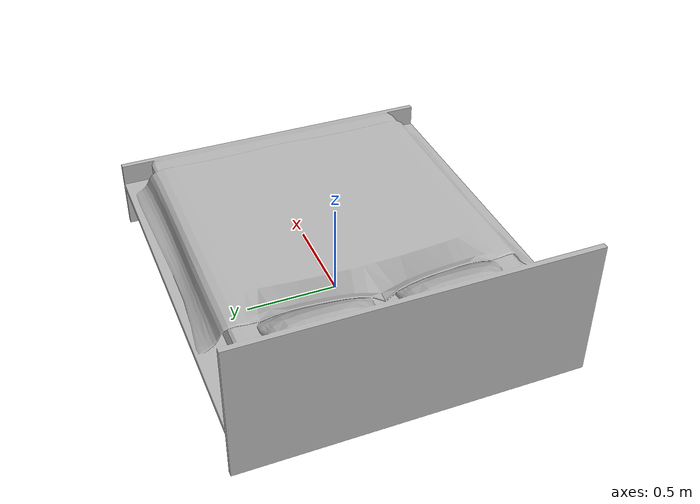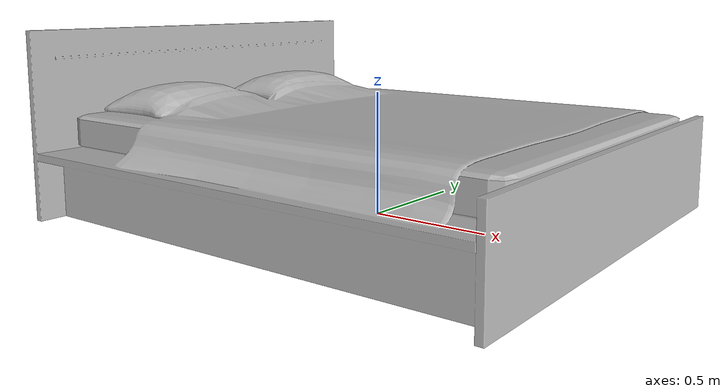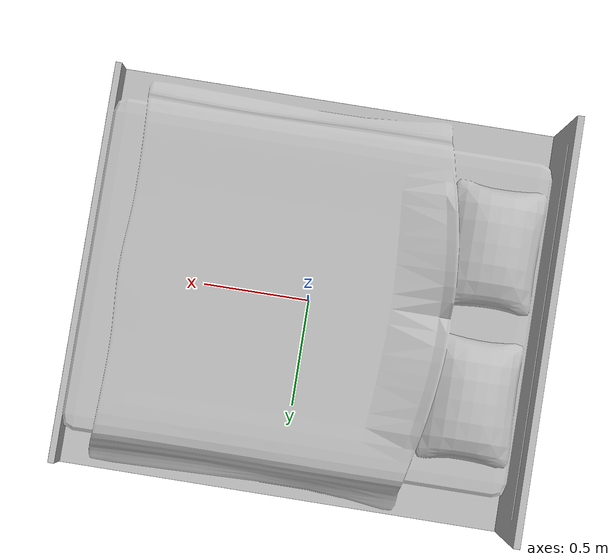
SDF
<?xml version='1.0'?>
<sdf version='1.4'>
  <model name='205'>
    <pose>0 0 0 0 0 0</pose>
    <static>true</static>
    <link name='link'>
      <collision name='collision'>
        <pose>0 0 0 0 0 0</pose>
        <geometry>
          <box>
            <size>2.03 1.8 2</size>
          </box>
        </geometry>
      </collision>
      <visual name='visual'>
        <pose>0 0 0 0 0 0</pose>
        <geometry>
          <mesh><uri>model://205/205.dae</uri></mesh>
        </geometry>
      </visual>
    </link>
  </model>
</sdf>
